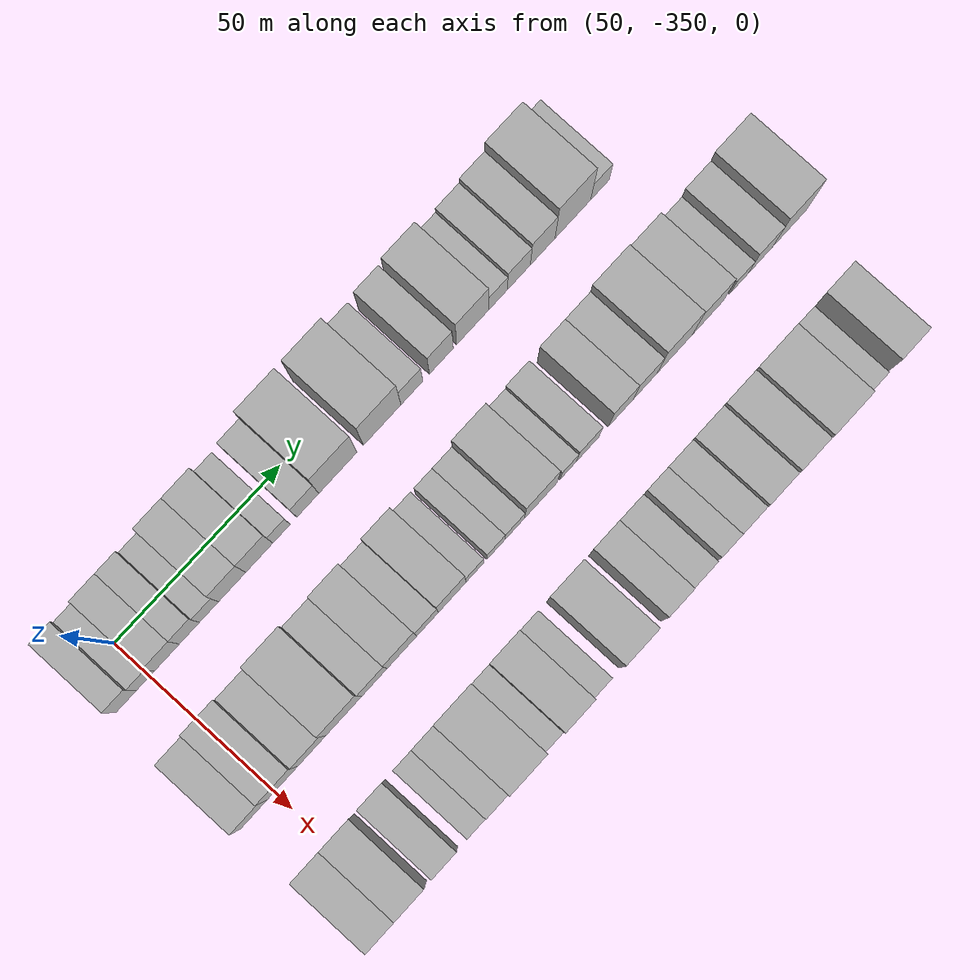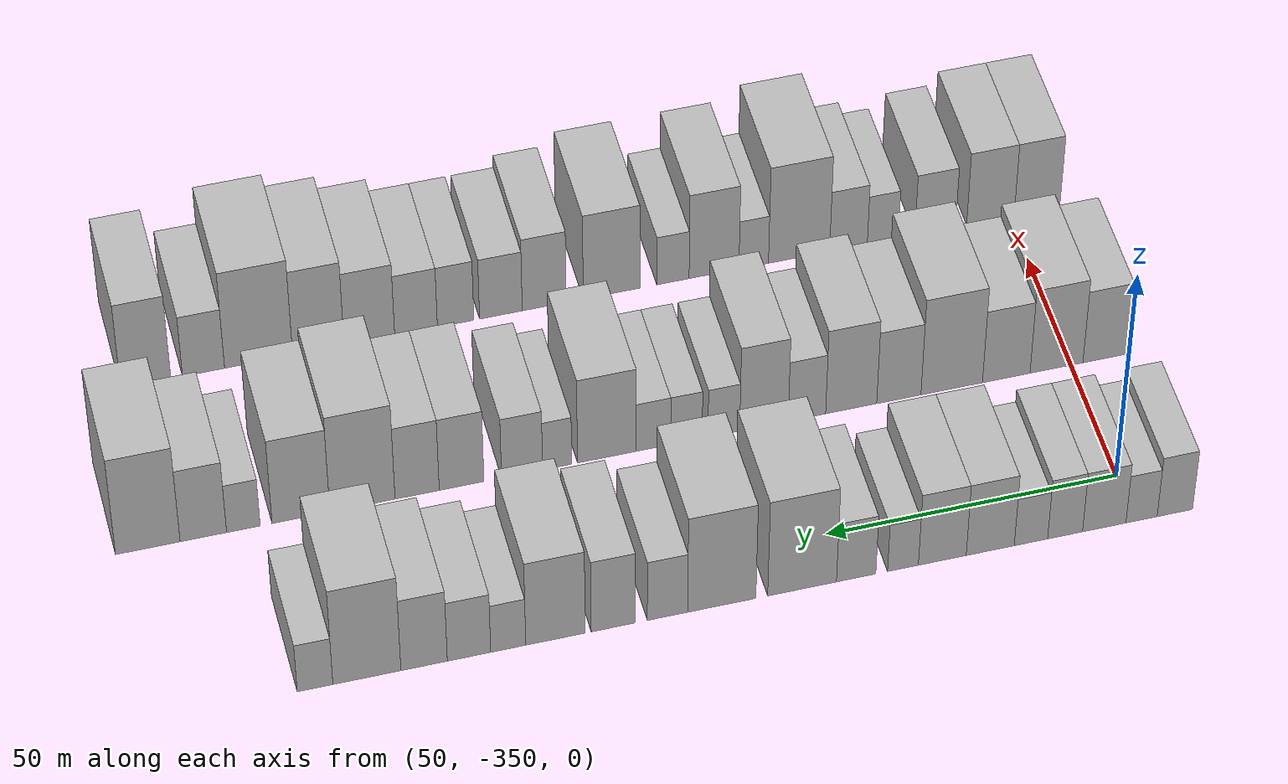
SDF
<sdf version="1.6">
 <world name="default">
  <model name="building_1">
   <static>1</static>
   <pose>50.0000 -356.9338 0 0.000000 0.000000 0.000000</pose>
   <link name="link">
    <pose>0 0 7.50 0 0 0</pose>
    <collision name="collision"><geometry><box><size>20.0000 6.1324 15.0000</size></box></geometry></collision>
    <visual name="visual">
     <cast_shadows>0</cast_shadows>
     <geometry><box><size>20.0000 6.1324 15.0000</size></box></geometry>
     <material>
      <script>
       <uri>model://HANNAS_wall/materials/scripts</uri>
       <uri>model://HANNAS_wall/materials/textures</uri>
       <name>vrc/HANNAS_wall</name>
      </script>
     </material>
    </visual>
   </link>
  </model>
  <model name="building_2">
   <static>1</static>
   <pose>50.0000 -351.1675 0 0.000000 0.000000 0.000000</pose>
   <link name="link">
    <pose>0 0 6.00 0 0 0</pose>
    <collision name="collision"><geometry><box><size>20.0000 5.4001 12.0000</size></box></geometry></collision>
    <visual name="visual">
     <cast_shadows>0</cast_shadows>
     <geometry><box><size>20.0000 5.4001 12.0000</size></box></geometry>
     <material>
      <script>
       <uri>model://HANNAS_wall/materials/scripts</uri>
       <uri>model://HANNAS_wall/materials/textures</uri>
       <name>vrc/HANNAS_wall</name>
      </script>
     </material>
    </visual>
   </link>
  </model>
  <model name="building_3">
   <static>1</static>
   <pose>50.0000 -344.7227 0 0.000000 0.000000 0.000000</pose>
   <link name="link">
    <pose>0 0 7.50 0 0 0</pose>
    <collision name="collision"><geometry><box><size>20.0000 7.4894 15.0000</size></box></geometry></collision>
    <visual name="visual">
     <cast_shadows>0</cast_shadows>
     <geometry><box><size>20.0000 7.4894 15.0000</size></box></geometry>
     <material>
      <script>
       <uri>model://HANNAS_wall/materials/scripts</uri>
       <uri>model://HANNAS_wall/materials/textures</uri>
       <name>vrc/HANNAS_wall</name>
      </script>
     </material>
    </visual>
   </link>
  </model>
  <model name="building_4">
   <static>1</static>
   <pose>50.0000 -337.9662 0 0.000000 0.000000 0.000000</pose>
   <link name="link">
    <pose>0 0 7.50 0 0 0</pose>
    <collision name="collision"><geometry><box><size>20.0000 6.0236 15.0000</size></box></geometry></collision>
    <visual name="visual">
     <cast_shadows>0</cast_shadows>
     <geometry><box><size>20.0000 6.0236 15.0000</size></box></geometry>
     <material>
      <script>
       <uri>model://HANNAS_wall/materials/scripts</uri>
       <uri>model://HANNAS_wall/materials/textures</uri>
       <name>vrc/HANNAS_wall</name>
      </script>
     </material>
    </visual>
   </link>
  </model>
  <model name="building_5">
   <static>1</static>
   <pose>50.0000 -332.0919 0 0.000000 0.000000 0.000000</pose>
   <link name="link">
    <pose>0 0 6.00 0 0 0</pose>
    <collision name="collision"><geometry><box><size>20.0000 5.7251 12.0000</size></box></geometry></collision>
    <visual name="visual">
     <cast_shadows>0</cast_shadows>
     <geometry><box><size>20.0000 5.7251 12.0000</size></box></geometry>
     <material>
      <script>
       <uri>model://HANNAS_wall/materials/scripts</uri>
       <uri>model://HANNAS_wall/materials/textures</uri>
       <name>vrc/HANNAS_wall</name>
      </script>
     </material>
    </visual>
   </link>
  </model>
  <model name="building_6">
   <static>1</static>
   <pose>50.0000 -325.1106 0 0.000000 0.000000 0.000000</pose>
   <link name="link">
    <pose>0 0 9.00 0 0 0</pose>
    <collision name="collision"><geometry><box><size>20.0000 8.2375 18.0000</size></box></geometry></collision>
    <visual name="visual">
     <cast_shadows>0</cast_shadows>
     <geometry><box><size>20.0000 8.2375 18.0000</size></box></geometry>
     <material>
      <script>
       <uri>model://HANNAS_wall/materials/scripts</uri>
       <uri>model://HANNAS_wall/materials/textures</uri>
       <name>vrc/HANNAS_wall</name>
      </script>
     </material>
    </visual>
   </link>
  </model>
  <model name="building_7">
   <static>1</static>
   <pose>50.0000 -316.9028 0 0.000000 0.000000 0.000000</pose>
   <link name="link">
    <pose>0 0 9.00 0 0 0</pose>
    <collision name="collision"><geometry><box><size>20.0000 8.1780 18.0000</size></box></geometry></collision>
    <visual name="visual">
     <cast_shadows>0</cast_shadows>
     <geometry><box><size>20.0000 8.1780 18.0000</size></box></geometry>
     <material>
      <script>
       <uri>model://HANNAS_wall/materials/scripts</uri>
       <uri>model://HANNAS_wall/materials/textures</uri>
       <name>vrc/HANNAS_wall</name>
      </script>
     </material>
    </visual>
   </link>
  </model>
  <model name="building_8">
   <static>1</static>
   <pose>50.0000 -310.1888 0 0.000000 0.000000 0.000000</pose>
   <link name="link">
    <pose>0 0 6.00 0 0 0</pose>
    <collision name="collision"><geometry><box><size>20.0000 5.2501 12.0000</size></box></geometry></collision>
    <visual name="visual">
     <cast_shadows>0</cast_shadows>
     <geometry><box><size>20.0000 5.2501 12.0000</size></box></geometry>
     <material>
      <script>
       <uri>model://HANNAS_wall/materials/scripts</uri>
       <uri>model://HANNAS_wall/materials/textures</uri>
       <name>vrc/HANNAS_wall</name>
      </script>
     </material>
    </visual>
   </link>
  </model>
  <model name="building_9">
   <static>1</static>
   <pose>50.0000 -302.2213 0 0.000000 0.000000 0.000000</pose>
   <link name="link">
    <pose>0 0 7.50 0 0 0</pose>
    <collision name="collision"><geometry><box><size>20.0000 6.6848 15.0000</size></box></geometry></collision>
    <visual name="visual">
     <cast_shadows>0</cast_shadows>
     <geometry><box><size>20.0000 6.6848 15.0000</size></box></geometry>
     <material>
      <script>
       <uri>model://HANNAS_wall/materials/scripts</uri>
       <uri>model://HANNAS_wall/materials/textures</uri>
       <name>vrc/HANNAS_wall</name>
      </script>
     </material>
    </visual>
   </link>
  </model>
  <model name="building_10">
   <static>1</static>
   <pose>50.0000 -293.0552 0 0.000000 0.000000 0.000000</pose>
   <link name="link">
    <pose>0 0 12.00 0 0 0</pose>
    <collision name="collision"><geometry><box><size>20.0000 11.6474 24.0000</size></box></geometry></collision>
    <visual name="visual">
     <cast_shadows>0</cast_shadows>
     <geometry><box><size>20.0000 11.6474 24.0000</size></box></geometry>
     <material>
      <script>
       <uri>model://HANNAS_wall/materials/scripts</uri>
       <uri>model://HANNAS_wall/materials/textures</uri>
       <name>vrc/HANNAS_wall</name>
      </script>
     </material>
    </visual>
   </link>
  </model>
  <model name="building_11">
   <static>1</static>
   <pose>50.0000 -279.4798 0 0.000000 0.000000 0.000000</pose>
   <link name="link">
    <pose>0 0 12.00 0 0 0</pose>
    <collision name="collision"><geometry><box><size>20.0000 11.5034 24.0000</size></box></geometry></collision>
    <visual name="visual">
     <cast_shadows>0</cast_shadows>
     <geometry><box><size>20.0000 11.5034 24.0000</size></box></geometry>
     <material>
      <script>
       <uri>model://HANNAS_wall/materials/scripts</uri>
       <uri>model://HANNAS_wall/materials/textures</uri>
       <name>vrc/HANNAS_wall</name>
      </script>
     </material>
    </visual>
   </link>
  </model>
  <model name="building_12">
   <static>1</static>
   <pose>50.0000 -270.3471 0 0.000000 0.000000 0.000000</pose>
   <link name="link">
    <pose>0 0 7.50 0 0 0</pose>
    <collision name="collision"><geometry><box><size>20.0000 6.7619 15.0000</size></box></geometry></collision>
    <visual name="visual">
     <cast_shadows>0</cast_shadows>
     <geometry><box><size>20.0000 6.7619 15.0000</size></box></geometry>
     <material>
      <script>
       <uri>model://HANNAS_wall/materials/scripts</uri>
       <uri>model://HANNAS_wall/materials/textures</uri>
       <name>vrc/HANNAS_wall</name>
      </script>
     </material>
    </visual>
   </link>
  </model>
  <model name="building_13">
   <static>1</static>
   <pose>50.0000 -261.2741 0 0.000000 0.000000 0.000000</pose>
   <link name="link">
    <pose>0 0 9.00 0 0 0</pose>
    <collision name="collision"><geometry><box><size>20.0000 7.3841 18.0000</size></box></geometry></collision>
    <visual name="visual">
     <cast_shadows>0</cast_shadows>
     <geometry><box><size>20.0000 7.3841 18.0000</size></box></geometry>
     <material>
      <script>
       <uri>model://HANNAS_wall/materials/scripts</uri>
       <uri>model://HANNAS_wall/materials/textures</uri>
       <name>vrc/HANNAS_wall</name>
      </script>
     </material>
    </visual>
   </link>
  </model>
  <model name="building_14">
   <static>1</static>
   <pose>50.0000 -251.6240 0 0.000000 0.000000 0.000000</pose>
   <link name="link">
    <pose>0 0 10.50 0 0 0</pose>
    <collision name="collision"><geometry><box><size>20.0000 9.9161 21.0000</size></box></geometry></collision>
    <visual name="visual">
     <cast_shadows>0</cast_shadows>
     <geometry><box><size>20.0000 9.9161 21.0000</size></box></geometry>
     <material>
      <script>
       <uri>model://HANNAS_wall/materials/scripts</uri>
       <uri>model://HANNAS_wall/materials/textures</uri>
       <name>vrc/HANNAS_wall</name>
      </script>
     </material>
    </visual>
   </link>
  </model>
  <model name="building_15">
   <static>1</static>
   <pose>50.0000 -243.7519 0 0.000000 0.000000 0.000000</pose>
   <link name="link">
    <pose>0 0 6.00 0 0 0</pose>
    <collision name="collision"><geometry><box><size>20.0000 5.8281 12.0000</size></box></geometry></collision>
    <visual name="visual">
     <cast_shadows>0</cast_shadows>
     <geometry><box><size>20.0000 5.8281 12.0000</size></box></geometry>
     <material>
      <script>
       <uri>model://HANNAS_wall/materials/scripts</uri>
       <uri>model://HANNAS_wall/materials/textures</uri>
       <name>vrc/HANNAS_wall</name>
      </script>
     </material>
    </visual>
   </link>
  </model>
  <model name="building_16">
   <static>1</static>
   <pose>50.0000 -237.2432 0 0.000000 0.000000 0.000000</pose>
   <link name="link">
    <pose>0 0 7.50 0 0 0</pose>
    <collision name="collision"><geometry><box><size>20.0000 7.1892 15.0000</size></box></geometry></collision>
    <visual name="visual">
     <cast_shadows>0</cast_shadows>
     <geometry><box><size>20.0000 7.1892 15.0000</size></box></geometry>
     <material>
      <script>
       <uri>model://HANNAS_wall/materials/scripts</uri>
       <uri>model://HANNAS_wall/materials/textures</uri>
       <name>vrc/HANNAS_wall</name>
      </script>
     </material>
    </visual>
   </link>
  </model>
  <model name="building_17">
   <static>1</static>
   <pose>50.0000 -229.8094 0 0.000000 0.000000 0.000000</pose>
   <link name="link">
    <pose>0 0 9.00 0 0 0</pose>
    <collision name="collision"><geometry><box><size>20.0000 7.6785 18.0000</size></box></geometry></collision>
    <visual name="visual">
     <cast_shadows>0</cast_shadows>
     <geometry><box><size>20.0000 7.6785 18.0000</size></box></geometry>
     <material>
      <script>
       <uri>model://HANNAS_wall/materials/scripts</uri>
       <uri>model://HANNAS_wall/materials/textures</uri>
       <name>vrc/HANNAS_wall</name>
      </script>
     </material>
    </visual>
   </link>
  </model>
  <model name="building_18">
   <static>1</static>
   <pose>50.0000 -220.3632 0 0.000000 0.000000 0.000000</pose>
   <link name="link">
    <pose>0 0 12.00 0 0 0</pose>
    <collision name="collision"><geometry><box><size>20.0000 11.2139 24.0000</size></box></geometry></collision>
    <visual name="visual">
     <cast_shadows>0</cast_shadows>
     <geometry><box><size>20.0000 11.2139 24.0000</size></box></geometry>
     <material>
      <script>
       <uri>model://HANNAS_wall/materials/scripts</uri>
       <uri>model://HANNAS_wall/materials/textures</uri>
       <name>vrc/HANNAS_wall</name>
      </script>
     </material>
    </visual>
   </link>
  </model>
  <model name="building_19">
   <static>1</static>
   <pose>50.0000 -211.8274 0 0.000000 0.000000 0.000000</pose>
   <link name="link">
    <pose>0 0 6.00 0 0 0</pose>
    <collision name="collision"><geometry><box><size>20.0000 5.8578 12.0000</size></box></geometry></collision>
    <visual name="visual">
     <cast_shadows>0</cast_shadows>
     <geometry><box><size>20.0000 5.8578 12.0000</size></box></geometry>
     <material>
      <script>
       <uri>model://HANNAS_wall/materials/scripts</uri>
       <uri>model://HANNAS_wall/materials/textures</uri>
       <name>vrc/HANNAS_wall</name>
      </script>
     </material>
    </visual>
   </link>
  </model>
  <model name="building_77">
   <static>1</static>
   <pose>85.0000 -356.0620 0 0.000000 0.000000 0.000000</pose>
   <link name="link">
    <pose>0 0 9.00 0 0 0</pose>
    <collision name="collision"><geometry><box><size>20.0000 7.8759 18.0000</size></box></geometry></collision>
    <visual name="visual">
     <cast_shadows>0</cast_shadows>
     <geometry><box><size>20.0000 7.8759 18.0000</size></box></geometry>
     <material>
      <script>
       <uri>model://HANNAS_wall/materials/scripts</uri>
       <uri>model://HANNAS_wall/materials/textures</uri>
       <name>vrc/HANNAS_wall</name>
      </script>
     </material>
    </visual>
   </link>
  </model>
  <model name="building_78">
   <static>1</static>
   <pose>85.0000 -347.4460 0 0.000000 0.000000 0.000000</pose>
   <link name="link">
    <pose>0 0 10.50 0 0 0</pose>
    <collision name="collision"><geometry><box><size>20.0000 9.3561 21.0000</size></box></geometry></collision>
    <visual name="visual">
     <cast_shadows>0</cast_shadows>
     <geometry><box><size>20.0000 9.3561 21.0000</size></box></geometry>
     <material>
      <script>
       <uri>model://HANNAS_wall/materials/scripts</uri>
       <uri>model://HANNAS_wall/materials/textures</uri>
       <name>vrc/HANNAS_wall</name>
      </script>
     </material>
    </visual>
   </link>
  </model>
  <model name="building_79">
   <static>1</static>
   <pose>85.0000 -338.5769 0 0.000000 0.000000 0.000000</pose>
   <link name="link">
    <pose>0 0 9.00 0 0 0</pose>
    <collision name="collision"><geometry><box><size>20.0000 8.3823 18.0000</size></box></geometry></collision>
    <visual name="visual">
     <cast_shadows>0</cast_shadows>
     <geometry><box><size>20.0000 8.3823 18.0000</size></box></geometry>
     <material>
      <script>
       <uri>model://HANNAS_wall/materials/scripts</uri>
       <uri>model://HANNAS_wall/materials/textures</uri>
       <name>vrc/HANNAS_wall</name>
      </script>
     </material>
    </visual>
   </link>
  </model>
  <model name="building_80">
   <static>1</static>
   <pose>85.0000 -328.9844 0 0.000000 0.000000 0.000000</pose>
   <link name="link">
    <pose>0 0 12.00 0 0 0</pose>
    <collision name="collision"><geometry><box><size>20.0000 10.8027 24.0000</size></box></geometry></collision>
    <visual name="visual">
     <cast_shadows>0</cast_shadows>
     <geometry><box><size>20.0000 10.8027 24.0000</size></box></geometry>
     <material>
      <script>
       <uri>model://HANNAS_wall/materials/scripts</uri>
       <uri>model://HANNAS_wall/materials/textures</uri>
       <name>vrc/HANNAS_wall</name>
      </script>
     </material>
    </visual>
   </link>
  </model>
  <model name="building_81">
   <static>1</static>
   <pose>85.0000 -319.7129 0 0.000000 0.000000 0.000000</pose>
   <link name="link">
    <pose>0 0 9.00 0 0 0</pose>
    <collision name="collision"><geometry><box><size>20.0000 7.7402 18.0000</size></box></geometry></collision>
    <visual name="visual">
     <cast_shadows>0</cast_shadows>
     <geometry><box><size>20.0000 7.7402 18.0000</size></box></geometry>
     <material>
      <script>
       <uri>model://HANNAS_wall/materials/scripts</uri>
       <uri>model://HANNAS_wall/materials/textures</uri>
       <name>vrc/HANNAS_wall</name>
      </script>
     </material>
    </visual>
   </link>
  </model>
  <model name="building_82">
   <static>1</static>
   <pose>85.0000 -311.3867 0 0.000000 0.000000 0.000000</pose>
   <link name="link">
    <pose>0 0 10.50 0 0 0</pose>
    <collision name="collision"><geometry><box><size>20.0000 8.9122 21.0000</size></box></geometry></collision>
    <visual name="visual">
     <cast_shadows>0</cast_shadows>
     <geometry><box><size>20.0000 8.9122 21.0000</size></box></geometry>
     <material>
      <script>
       <uri>model://HANNAS_wall/materials/scripts</uri>
       <uri>model://HANNAS_wall/materials/textures</uri>
       <name>vrc/HANNAS_wall</name>
      </script>
     </material>
    </visual>
   </link>
  </model>
  <model name="building_83">
   <static>1</static>
   <pose>85.0000 -303.6710 0 0.000000 0.000000 0.000000</pose>
   <link name="link">
    <pose>0 0 7.50 0 0 0</pose>
    <collision name="collision"><geometry><box><size>20.0000 6.5192 15.0000</size></box></geometry></collision>
    <visual name="visual">
     <cast_shadows>0</cast_shadows>
     <geometry><box><size>20.0000 6.5192 15.0000</size></box></geometry>
     <material>
      <script>
       <uri>model://HANNAS_wall/materials/scripts</uri>
       <uri>model://HANNAS_wall/materials/textures</uri>
       <name>vrc/HANNAS_wall</name>
      </script>
     </material>
    </visual>
   </link>
  </model>
  <model name="building_84">
   <static>1</static>
   <pose>85.0000 -296.2049 0 0.000000 0.000000 0.000000</pose>
   <link name="link">
    <pose>0 0 10.50 0 0 0</pose>
    <collision name="collision"><geometry><box><size>20.0000 8.4130 21.0000</size></box></geometry></collision>
    <visual name="visual">
     <cast_shadows>0</cast_shadows>
     <geometry><box><size>20.0000 8.4130 21.0000</size></box></geometry>
     <material>
      <script>
       <uri>model://HANNAS_wall/materials/scripts</uri>
       <uri>model://HANNAS_wall/materials/textures</uri>
       <name>vrc/HANNAS_wall</name>
      </script>
     </material>
    </visual>
   </link>
  </model>
  <model name="building_85">
   <static>1</static>
   <pose>85.0000 -289.2500 0 0.000000 0.000000 0.000000</pose>
   <link name="link">
    <pose>0 0 6.00 0 0 0</pose>
    <collision name="collision"><geometry><box><size>20.0000 5.4966 12.0000</size></box></geometry></collision>
    <visual name="visual">
     <cast_shadows>0</cast_shadows>
     <geometry><box><size>20.0000 5.4966 12.0000</size></box></geometry>
     <material>
      <script>
       <uri>model://HANNAS_wall/materials/scripts</uri>
       <uri>model://HANNAS_wall/materials/textures</uri>
       <name>vrc/HANNAS_wall</name>
      </script>
     </material>
    </visual>
   </link>
  </model>
  <model name="building_86">
   <static>1</static>
   <pose>85.0000 -282.7774 0 0.000000 0.000000 0.000000</pose>
   <link name="link">
    <pose>0 0 6.00 0 0 0</pose>
    <collision name="collision"><geometry><box><size>20.0000 5.4487 12.0000</size></box></geometry></collision>
    <visual name="visual">
     <cast_shadows>0</cast_shadows>
     <geometry><box><size>20.0000 5.4487 12.0000</size></box></geometry>
     <material>
      <script>
       <uri>model://HANNAS_wall/materials/scripts</uri>
       <uri>model://HANNAS_wall/materials/textures</uri>
       <name>vrc/HANNAS_wall</name>
      </script>
     </material>
    </visual>
   </link>
  </model>
  <model name="building_87">
   <static>1</static>
   <pose>85.0000 -277.0895 0 0.000000 0.000000 0.000000</pose>
   <link name="link">
    <pose>0 0 6.00 0 0 0</pose>
    <collision name="collision"><geometry><box><size>20.0000 5.9272 12.0000</size></box></geometry></collision>
    <visual name="visual">
     <cast_shadows>0</cast_shadows>
     <geometry><box><size>20.0000 5.9272 12.0000</size></box></geometry>
     <material>
      <script>
       <uri>model://HANNAS_wall/materials/scripts</uri>
       <uri>model://HANNAS_wall/materials/textures</uri>
       <name>vrc/HANNAS_wall</name>
      </script>
     </material>
    </visual>
   </link>
  </model>
  <model name="building_88">
   <static>1</static>
   <pose>85.0000 -269.0849 0 0.000000 0.000000 0.000000</pose>
   <link name="link">
    <pose>0 0 10.50 0 0 0</pose>
    <collision name="collision"><geometry><box><size>20.0000 10.0818 21.0000</size></box></geometry></collision>
    <visual name="visual">
     <cast_shadows>0</cast_shadows>
     <geometry><box><size>20.0000 10.0818 21.0000</size></box></geometry>
     <material>
      <script>
       <uri>model://HANNAS_wall/materials/scripts</uri>
       <uri>model://HANNAS_wall/materials/textures</uri>
       <name>vrc/HANNAS_wall</name>
      </script>
     </material>
    </visual>
   </link>
  </model>
  <model name="building_89">
   <static>1</static>
   <pose>85.0000 -260.5490 0 0.000000 0.000000 0.000000</pose>
   <link name="link">
    <pose>0 0 6.00 0 0 0</pose>
    <collision name="collision"><geometry><box><size>20.0000 4.9901 12.0000</size></box></geometry></collision>
    <visual name="visual">
     <cast_shadows>0</cast_shadows>
     <geometry><box><size>20.0000 4.9901 12.0000</size></box></geometry>
     <material>
      <script>
       <uri>model://HANNAS_wall/materials/scripts</uri>
       <uri>model://HANNAS_wall/materials/textures</uri>
       <name>vrc/HANNAS_wall</name>
      </script>
     </material>
    </visual>
   </link>
  </model>
  <model name="building_90">
   <static>1</static>
   <pose>85.0000 -254.5447 0 0.000000 0.000000 0.000000</pose>
   <link name="link">
    <pose>0 0 7.50 0 0 0</pose>
    <collision name="collision"><geometry><box><size>20.0000 7.0185 15.0000</size></box></geometry></collision>
    <visual name="visual">
     <cast_shadows>0</cast_shadows>
     <geometry><box><size>20.0000 7.0185 15.0000</size></box></geometry>
     <material>
      <script>
       <uri>model://HANNAS_wall/materials/scripts</uri>
       <uri>model://HANNAS_wall/materials/textures</uri>
       <name>vrc/HANNAS_wall</name>
      </script>
     </material>
    </visual>
   </link>
  </model>
  <model name="building_91">
   <static>1</static>
   <pose>85.0000 -244.2322 0 0.000000 0.000000 0.000000</pose>
   <link name="link">
    <pose>0 0 9.00 0 0 0</pose>
    <collision name="collision"><geometry><box><size>20.0000 7.6065 18.0000</size></box></geometry></collision>
    <visual name="visual">
     <cast_shadows>0</cast_shadows>
     <geometry><box><size>20.0000 7.6065 18.0000</size></box></geometry>
     <material>
      <script>
       <uri>model://HANNAS_wall/materials/scripts</uri>
       <uri>model://HANNAS_wall/materials/textures</uri>
       <name>vrc/HANNAS_wall</name>
      </script>
     </material>
    </visual>
   </link>
  </model>
  <model name="building_92">
   <static>1</static>
   <pose>85.0000 -236.6760 0 0.000000 0.000000 0.000000</pose>
   <link name="link">
    <pose>0 0 9.00 0 0 0</pose>
    <collision name="collision"><geometry><box><size>20.0000 7.5058 18.0000</size></box></geometry></collision>
    <visual name="visual">
     <cast_shadows>0</cast_shadows>
     <geometry><box><size>20.0000 7.5058 18.0000</size></box></geometry>
     <material>
      <script>
       <uri>model://HANNAS_wall/materials/scripts</uri>
       <uri>model://HANNAS_wall/materials/textures</uri>
       <name>vrc/HANNAS_wall</name>
      </script>
     </material>
    </visual>
   </link>
  </model>
  <model name="building_93">
   <static>1</static>
   <pose>85.0000 -227.4088 0 0.000000 0.000000 0.000000</pose>
   <link name="link">
    <pose>0 0 12.00 0 0 0</pose>
    <collision name="collision"><geometry><box><size>20.0000 11.0287 24.0000</size></box></geometry></collision>
    <visual name="visual">
     <cast_shadows>0</cast_shadows>
     <geometry><box><size>20.0000 11.0287 24.0000</size></box></geometry>
     <material>
      <script>
       <uri>model://HANNAS_wall/materials/scripts</uri>
       <uri>model://HANNAS_wall/materials/textures</uri>
       <name>vrc/HANNAS_wall</name>
      </script>
     </material>
    </visual>
   </link>
  </model>
  <model name="building_94">
   <static>1</static>
   <pose>85.0000 -217.0209 0 0.000000 0.000000 0.000000</pose>
   <link name="link">
    <pose>0 0 10.50 0 0 0</pose>
    <collision name="collision"><geometry><box><size>20.0000 9.7471 21.0000</size></box></geometry></collision>
    <visual name="visual">
     <cast_shadows>0</cast_shadows>
     <geometry><box><size>20.0000 9.7471 21.0000</size></box></geometry>
     <material>
      <script>
       <uri>model://HANNAS_wall/materials/scripts</uri>
       <uri>model://HANNAS_wall/materials/textures</uri>
       <name>vrc/HANNAS_wall</name>
      </script>
     </material>
    </visual>
   </link>
  </model>
  <model name="building_95">
   <static>1</static>
   <pose>85.0000 -207.3298 0 0.000000 0.000000 0.000000</pose>
   <link name="link">
    <pose>0 0 6.00 0 0 0</pose>
    <collision name="collision"><geometry><box><size>20.0000 5.6350 12.0000</size></box></geometry></collision>
    <visual name="visual">
     <cast_shadows>0</cast_shadows>
     <geometry><box><size>20.0000 5.6350 12.0000</size></box></geometry>
     <material>
      <script>
       <uri>model://HANNAS_wall/materials/scripts</uri>
       <uri>model://HANNAS_wall/materials/textures</uri>
       <name>vrc/HANNAS_wall</name>
      </script>
     </material>
    </visual>
   </link>
  </model>
  <model name="building_96">
   <static>1</static>
   <pose>85.0000 -200.6184 0 0.000000 0.000000 0.000000</pose>
   <link name="link">
    <pose>0 0 9.00 0 0 0</pose>
    <collision name="collision"><geometry><box><size>20.0000 7.7878 18.0000</size></box></geometry></collision>
    <visual name="visual">
     <cast_shadows>0</cast_shadows>
     <geometry><box><size>20.0000 7.7878 18.0000</size></box></geometry>
     <material>
      <script>
       <uri>model://HANNAS_wall/materials/scripts</uri>
       <uri>model://HANNAS_wall/materials/textures</uri>
       <name>vrc/HANNAS_wall</name>
      </script>
     </material>
    </visual>
   </link>
  </model>
  <model name="building_97">
   <static>1</static>
   <pose>85.0000 -191.3232 0 0.000000 0.000000 0.000000</pose>
   <link name="link">
    <pose>0 0 12.00 0 0 0</pose>
    <collision name="collision"><geometry><box><size>20.0000 10.8026 24.0000</size></box></geometry></collision>
    <visual name="visual">
     <cast_shadows>0</cast_shadows>
     <geometry><box><size>20.0000 10.8026 24.0000</size></box></geometry>
     <material>
      <script>
       <uri>model://HANNAS_wall/materials/scripts</uri>
       <uri>model://HANNAS_wall/materials/textures</uri>
       <name>vrc/HANNAS_wall</name>
      </script>
     </material>
    </visual>
   </link>
  </model>
  <model name="building_155">
   <static>1</static>
   <pose>120.0000 -354.8708 0 0.000000 0.000000 0.000000</pose>
   <link name="link">
    <pose>0 0 9.00 0 0 0</pose>
    <collision name="collision"><geometry><box><size>20.0000 8.2584 18.0000</size></box></geometry></collision>
    <visual name="visual">
     <cast_shadows>0</cast_shadows>
     <geometry><box><size>20.0000 8.2584 18.0000</size></box></geometry>
     <material>
      <script>
       <uri>model://HANNAS_wall/materials/scripts</uri>
       <uri>model://HANNAS_wall/materials/textures</uri>
       <name>vrc/HANNAS_wall</name>
      </script>
     </material>
    </visual>
   </link>
  </model>
  <model name="building_156">
   <static>1</static>
   <pose>120.0000 -346.4431 0 0.000000 0.000000 0.000000</pose>
   <link name="link">
    <pose>0 0 9.00 0 0 0</pose>
    <collision name="collision"><geometry><box><size>20.0000 8.5971 18.0000</size></box></geometry></collision>
    <visual name="visual">
     <cast_shadows>0</cast_shadows>
     <geometry><box><size>20.0000 8.5971 18.0000</size></box></geometry>
     <material>
      <script>
       <uri>model://HANNAS_wall/materials/scripts</uri>
       <uri>model://HANNAS_wall/materials/textures</uri>
       <name>vrc/HANNAS_wall</name>
      </script>
     </material>
    </visual>
   </link>
  </model>
  <model name="building_157">
   <static>1</static>
   <pose>120.0000 -336.4767 0 0.000000 0.000000 0.000000</pose>
   <link name="link">
    <pose>0 0 7.50 0 0 0</pose>
    <collision name="collision"><geometry><box><size>20.0000 7.3356 15.0000</size></box></geometry></collision>
    <visual name="visual">
     <cast_shadows>0</cast_shadows>
     <geometry><box><size>20.0000 7.3356 15.0000</size></box></geometry>
     <material>
      <script>
       <uri>model://HANNAS_wall/materials/scripts</uri>
       <uri>model://HANNAS_wall/materials/textures</uri>
       <name>vrc/HANNAS_wall</name>
      </script>
     </material>
    </visual>
   </link>
  </model>
  <model name="building_158">
   <static>1</static>
   <pose>120.0000 -327.0448 0 0.000000 0.000000 0.000000</pose>
   <link name="link">
    <pose>0 0 6.00 0 0 0</pose>
    <collision name="collision"><geometry><box><size>20.0000 5.5283 12.0000</size></box></geometry></collision>
    <visual name="visual">
     <cast_shadows>0</cast_shadows>
     <geometry><box><size>20.0000 5.5283 12.0000</size></box></geometry>
     <material>
      <script>
       <uri>model://HANNAS_wall/materials/scripts</uri>
       <uri>model://HANNAS_wall/materials/textures</uri>
       <name>vrc/HANNAS_wall</name>
      </script>
     </material>
    </visual>
   </link>
  </model>
  <model name="building_159">
   <static>1</static>
   <pose>120.0000 -320.9088 0 0.000000 0.000000 0.000000</pose>
   <link name="link">
    <pose>0 0 7.50 0 0 0</pose>
    <collision name="collision"><geometry><box><size>20.0000 6.7436 15.0000</size></box></geometry></collision>
    <visual name="visual">
     <cast_shadows>0</cast_shadows>
     <geometry><box><size>20.0000 6.7436 15.0000</size></box></geometry>
     <material>
      <script>
       <uri>model://HANNAS_wall/materials/scripts</uri>
       <uri>model://HANNAS_wall/materials/textures</uri>
       <name>vrc/HANNAS_wall</name>
      </script>
     </material>
    </visual>
   </link>
  </model>
  <model name="building_160">
   <static>1</static>
   <pose>120.0000 -312.0730 0 0.000000 0.000000 0.000000</pose>
   <link name="link">
    <pose>0 0 12.00 0 0 0</pose>
    <collision name="collision"><geometry><box><size>20.0000 10.9281 24.0000</size></box></geometry></collision>
    <visual name="visual">
     <cast_shadows>0</cast_shadows>
     <geometry><box><size>20.0000 10.9281 24.0000</size></box></geometry>
     <material>
      <script>
       <uri>model://HANNAS_wall/materials/scripts</uri>
       <uri>model://HANNAS_wall/materials/textures</uri>
       <name>vrc/HANNAS_wall</name>
      </script>
     </material>
    </visual>
   </link>
  </model>
  <model name="building_161">
   <static>1</static>
   <pose>120.0000 -303.9796 0 0.000000 0.000000 0.000000</pose>
   <link name="link">
    <pose>0 0 6.00 0 0 0</pose>
    <collision name="collision"><geometry><box><size>20.0000 5.2586 12.0000</size></box></geometry></collision>
    <visual name="visual">
     <cast_shadows>0</cast_shadows>
     <geometry><box><size>20.0000 5.2586 12.0000</size></box></geometry>
     <material>
      <script>
       <uri>model://HANNAS_wall/materials/scripts</uri>
       <uri>model://HANNAS_wall/materials/textures</uri>
       <name>vrc/HANNAS_wall</name>
      </script>
     </material>
    </visual>
   </link>
  </model>
  <model name="building_162">
   <static>1</static>
   <pose>120.0000 -296.9261 0 0.000000 0.000000 0.000000</pose>
   <link name="link">
    <pose>0 0 10.50 0 0 0</pose>
    <collision name="collision"><geometry><box><size>20.0000 8.8484 21.0000</size></box></geometry></collision>
    <visual name="visual">
     <cast_shadows>0</cast_shadows>
     <geometry><box><size>20.0000 8.8484 21.0000</size></box></geometry>
     <material>
      <script>
       <uri>model://HANNAS_wall/materials/scripts</uri>
       <uri>model://HANNAS_wall/materials/textures</uri>
       <name>vrc/HANNAS_wall</name>
      </script>
     </material>
    </visual>
   </link>
  </model>
  <model name="building_163">
   <static>1</static>
   <pose>120.0000 -289.6429 0 0.000000 0.000000 0.000000</pose>
   <link name="link">
    <pose>0 0 6.00 0 0 0</pose>
    <collision name="collision"><geometry><box><size>20.0000 5.7180 12.0000</size></box></geometry></collision>
    <visual name="visual">
     <cast_shadows>0</cast_shadows>
     <geometry><box><size>20.0000 5.7180 12.0000</size></box></geometry>
     <material>
      <script>
       <uri>model://HANNAS_wall/materials/scripts</uri>
       <uri>model://HANNAS_wall/materials/textures</uri>
       <name>vrc/HANNAS_wall</name>
      </script>
     </material>
    </visual>
   </link>
  </model>
  <model name="building_164">
   <static>1</static>
   <pose>120.0000 -278.7952 0 0.000000 0.000000 0.000000</pose>
   <link name="link">
    <pose>0 0 10.50 0 0 0</pose>
    <collision name="collision"><geometry><box><size>20.0000 9.9775 21.0000</size></box></geometry></collision>
    <visual name="visual">
     <cast_shadows>0</cast_shadows>
     <geometry><box><size>20.0000 9.9775 21.0000</size></box></geometry>
     <material>
      <script>
       <uri>model://HANNAS_wall/materials/scripts</uri>
       <uri>model://HANNAS_wall/materials/textures</uri>
       <name>vrc/HANNAS_wall</name>
      </script>
     </material>
    </visual>
   </link>
  </model>
  <model name="building_165">
   <static>1</static>
   <pose>120.0000 -266.9425 0 0.000000 0.000000 0.000000</pose>
   <link name="link">
    <pose>0 0 9.00 0 0 0</pose>
    <collision name="collision"><geometry><box><size>20.0000 7.7280 18.0000</size></box></geometry></collision>
    <visual name="visual">
     <cast_shadows>0</cast_shadows>
     <geometry><box><size>20.0000 7.7280 18.0000</size></box></geometry>
     <material>
      <script>
       <uri>model://HANNAS_wall/materials/scripts</uri>
       <uri>model://HANNAS_wall/materials/textures</uri>
       <name>vrc/HANNAS_wall</name>
      </script>
     </material>
    </visual>
   </link>
  </model>
  <model name="building_166">
   <static>1</static>
   <pose>120.0000 -259.3394 0 0.000000 0.000000 0.000000</pose>
   <link name="link">
    <pose>0 0 7.50 0 0 0</pose>
    <collision name="collision"><geometry><box><size>20.0000 7.4780 15.0000</size></box></geometry></collision>
    <visual name="visual">
     <cast_shadows>0</cast_shadows>
     <geometry><box><size>20.0000 7.4780 15.0000</size></box></geometry>
     <material>
      <script>
       <uri>model://HANNAS_wall/materials/scripts</uri>
       <uri>model://HANNAS_wall/materials/textures</uri>
       <name>vrc/HANNAS_wall</name>
      </script>
     </material>
    </visual>
   </link>
  </model>
  <model name="building_167">
   <static>1</static>
   <pose>120.0000 -251.4153 0 0.000000 0.000000 0.000000</pose>
   <link name="link">
    <pose>0 0 7.50 0 0 0</pose>
    <collision name="collision"><geometry><box><size>20.0000 6.3702 15.0000</size></box></geometry></collision>
    <visual name="visual">
     <cast_shadows>0</cast_shadows>
     <geometry><box><size>20.0000 6.3702 15.0000</size></box></geometry>
     <material>
      <script>
       <uri>model://HANNAS_wall/materials/scripts</uri>
       <uri>model://HANNAS_wall/materials/textures</uri>
       <name>vrc/HANNAS_wall</name>
      </script>
     </material>
    </visual>
   </link>
  </model>
  <model name="building_168">
   <static>1</static>
   <pose>120.0000 -244.5058 0 0.000000 0.000000 0.000000</pose>
   <link name="link">
    <pose>0 0 7.50 0 0 0</pose>
    <collision name="collision"><geometry><box><size>20.0000 7.4488 15.0000</size></box></geometry></collision>
    <visual name="visual">
     <cast_shadows>0</cast_shadows>
     <geometry><box><size>20.0000 7.4488 15.0000</size></box></geometry>
     <material>
      <script>
       <uri>model://HANNAS_wall/materials/scripts</uri>
       <uri>model://HANNAS_wall/materials/textures</uri>
       <name>vrc/HANNAS_wall</name>
      </script>
     </material>
    </visual>
   </link>
  </model>
  <model name="building_169">
   <static>1</static>
   <pose>120.0000 -236.3888 0 0.000000 0.000000 0.000000</pose>
   <link name="link">
    <pose>0 0 9.00 0 0 0</pose>
    <collision name="collision"><geometry><box><size>20.0000 8.7853 18.0000</size></box></geometry></collision>
    <visual name="visual">
     <cast_shadows>0</cast_shadows>
     <geometry><box><size>20.0000 8.7853 18.0000</size></box></geometry>
     <material>
      <script>
       <uri>model://HANNAS_wall/materials/scripts</uri>
       <uri>model://HANNAS_wall/materials/textures</uri>
       <name>vrc/HANNAS_wall</name>
      </script>
     </material>
    </visual>
   </link>
  </model>
  <model name="building_170">
   <static>1</static>
   <pose>120.0000 -227.5389 0 0.000000 0.000000 0.000000</pose>
   <link name="link">
    <pose>0 0 10.50 0 0 0</pose>
    <collision name="collision"><geometry><box><size>20.0000 8.9144 21.0000</size></box></geometry></collision>
    <visual name="visual">
     <cast_shadows>0</cast_shadows>
     <geometry><box><size>20.0000 8.9144 21.0000</size></box></geometry>
     <material>
      <script>
       <uri>model://HANNAS_wall/materials/scripts</uri>
       <uri>model://HANNAS_wall/materials/textures</uri>
       <name>vrc/HANNAS_wall</name>
      </script>
     </material>
    </visual>
   </link>
  </model>
  <model name="building_171">
   <static>1</static>
   <pose>120.0000 -217.2090 0 0.000000 0.000000 0.000000</pose>
   <link name="link">
    <pose>0 0 12.00 0 0 0</pose>
    <collision name="collision"><geometry><box><size>20.0000 11.7455 24.0000</size></box></geometry></collision>
    <visual name="visual">
     <cast_shadows>0</cast_shadows>
     <geometry><box><size>20.0000 11.7455 24.0000</size></box></geometry>
     <material>
      <script>
       <uri>model://HANNAS_wall/materials/scripts</uri>
       <uri>model://HANNAS_wall/materials/textures</uri>
       <name>vrc/HANNAS_wall</name>
      </script>
     </material>
    </visual>
   </link>
  </model>
  <model name="building_172">
   <static>1</static>
   <pose>120.0000 -207.7140 0 0.000000 0.000000 0.000000</pose>
   <link name="link">
    <pose>0 0 7.50 0 0 0</pose>
    <collision name="collision"><geometry><box><size>20.0000 7.2444 15.0000</size></box></geometry></collision>
    <visual name="visual">
     <cast_shadows>0</cast_shadows>
     <geometry><box><size>20.0000 7.2444 15.0000</size></box></geometry>
     <material>
      <script>
       <uri>model://HANNAS_wall/materials/scripts</uri>
       <uri>model://HANNAS_wall/materials/textures</uri>
       <name>vrc/HANNAS_wall</name>
      </script>
     </material>
    </visual>
   </link>
  </model>
  <model name="building_173">
   <static>1</static>
   <pose>120.0000 -197.7855 0 0.000000 0.000000 0.000000</pose>
   <link name="link">
    <pose>0 0 10.50 0 0 0</pose>
    <collision name="collision"><geometry><box><size>20.0000 8.6127 21.0000</size></box></geometry></collision>
    <visual name="visual">
     <cast_shadows>0</cast_shadows>
     <geometry><box><size>20.0000 8.6127 21.0000</size></box></geometry>
     <material>
      <script>
       <uri>model://HANNAS_wall/materials/scripts</uri>
       <uri>model://HANNAS_wall/materials/textures</uri>
       <name>vrc/HANNAS_wall</name>
      </script>
     </material>
    </visual>
   </link>
  </model>
 </world>
</sdf>
